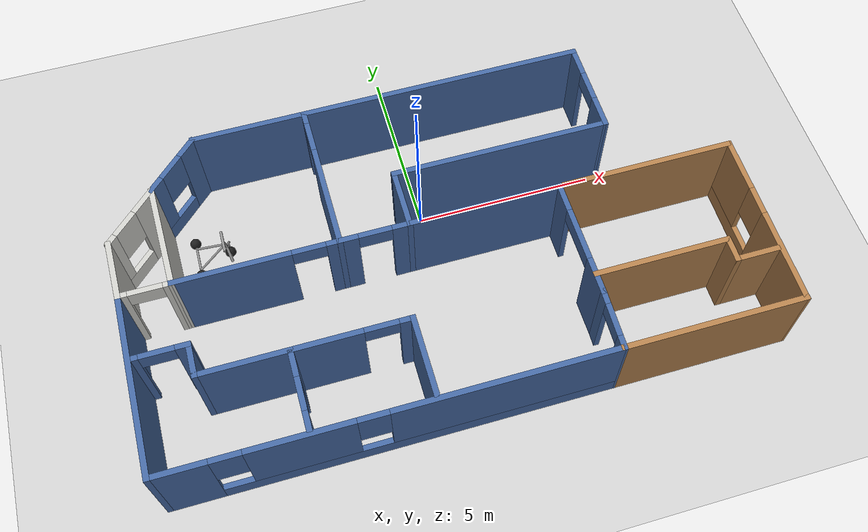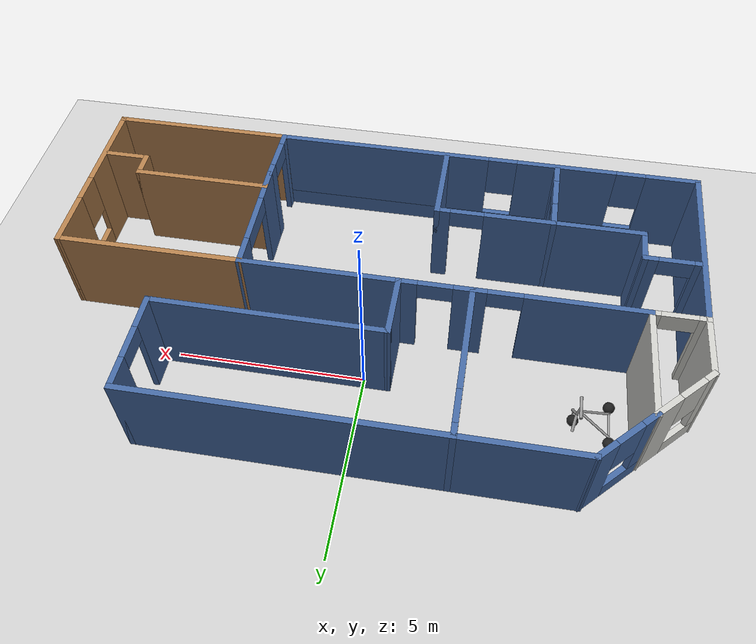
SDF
<sdf version="1.6">
 <world name="default">
  <model name="ground_plane">
   <static>1</static>
   <link name="link">
    <collision name="collision">
     <geometry><plane><normal>0 0 1</normal><size>100 100</size></plane></geometry>
     <surface>
      <contact><collide_bitmask>65535</collide_bitmask></contact>
      <friction><ode><mu>100</mu><mu2>50</mu2></ode></friction>
     </surface>
    </collision>
    <visual name="visual">
     <cast_shadows>0</cast_shadows>
     <geometry><plane><normal>0 0 1</normal><size>100 100</size></plane></geometry>
     <material>
      <script><uri>file://media/materials/scripts/gazebo.material</uri><name>Gazebo/Grey</name></script>
     </material>
    </visual>
   </link>
  </model>
  <model name="Building">
   <pose>0.01386 -1.75865 0 0 -0 0</pose>
   <link name="Wall_102">
    <pose>-2.84879 -2.32289 0 0 -0 0</pose>
    <visual name="Wall_102_Visual_0">
     <pose>-0.664345 0 1.25 0 -0 0</pose>
     <geometry><box><size>1.92131 0.15 2.5</size></box></geometry>
     <material>
      <script><uri>file://media/materials/scripts/gazebo.material</uri><name>Gazebo/Grey</name></script>
      <ambient>0.266667 0.407843 0.631373 1</ambient>
     </material>
     <meta><layer>0</layer></meta>
    </visual>
    <collision name="Wall_102_Collision_0">
     <geometry><box><size>1.92131 0.15 2.5</size></box></geometry>
     <pose>-0.664345 0 1.25 0 -0 0</pose>
    </collision>
    <visual name="Wall_102_Visual_1">
     <pose>1.41065 0 1.25 0 -0 0</pose>
     <geometry><box><size>0.42869 0.15 2.5</size></box></geometry>
     <material>
      <script><uri>file://media/materials/scripts/gazebo.material</uri><name>Gazebo/Grey</name></script>
      <ambient>0.266667 0.407843 0.631373 1</ambient>
     </material>
     <meta><layer>0</layer></meta>
    </visual>
    <collision name="Wall_102_Collision_1">
     <geometry><box><size>0.42869 0.15 2.5</size></box></geometry>
     <pose>1.41065 0 1.25 0 -0 0</pose>
    </collision>
    <visual name="Wall_102_Visual_2">
     <pose>0.74631 0 2.25 0 -0 0</pose>
     <geometry><box><size>0.9 0.15 0.5</size></box></geometry>
     <material>
      <script><uri>file://media/materials/scripts/gazebo.material</uri><name>Gazebo/Grey</name></script>
      <ambient>0.266667 0.407843 0.631373 1</ambient>
     </material>
     <meta><layer>0</layer></meta>
    </visual>
    <collision name="Wall_102_Collision_2">
     <geometry><box><size>0.9 0.15 0.5</size></box></geometry>
     <pose>0.74631 0 2.25 0 -0 0</pose>
    </collision>
   </link>
   <link name="Wall_104">
    <collision name="Wall_104_Collision">
     <geometry><box><size>2.5 0.15 2.5</size></box></geometry>
     <pose>0 0 1.25 0 -0 0</pose>
    </collision>
    <visual name="Wall_104_Visual">
     <pose>0 0 1.25 0 -0 0</pose>
     <geometry><box><size>2.5 0.15 2.5</size></box></geometry>
     <material>
      <script><uri>file://media/materials/scripts/gazebo.material</uri><name>Gazebo/Grey</name></script>
      <ambient>0.266667 0.407843 0.631373 1</ambient>
     </material>
     <meta><layer>0</layer></meta>
    </visual>
    <pose>-5.57379 -2.32289 0 0 -0 3.14159</pose>
   </link>
   <link name="Wall_105">
    <collision name="Wall_105_Collision">
     <geometry><box><size>1 0.15 2.5</size></box></geometry>
     <pose>0 0 1.25 0 -0 0</pose>
    </collision>
    <visual name="Wall_105_Visual">
     <pose>0 0 1.25 0 -0 0</pose>
     <geometry><box><size>1 0.15 2.5</size></box></geometry>
     <material>
      <script><uri>file://media/materials/scripts/gazebo.material</uri><name>Gazebo/Grey</name></script>
      <ambient>0.266667 0.407843 0.631373 1</ambient>
     </material>
     <meta><layer>0</layer></meta>
    </visual>
    <pose>-6.74879 -1.89789 0 0 -0 1.5708</pose>
   </link>
   <link name="Wall_106">
    <pose>-7.42379 -1.47289 0 0 -0 3.14159</pose>
    <visual name="Wall_106_Visual_0">
     <pose>-0.545893 0 1.25 0 -0 0</pose>
     <geometry><box><size>0.408214 0.15 2.5</size></box></geometry>
     <material>
      <script><uri>file://media/materials/scripts/gazebo.material</uri><name>Gazebo/Grey</name></script>
      <ambient>0.266667 0.407843 0.631373 1</ambient>
     </material>
     <meta><layer>0</layer></meta>
    </visual>
    <collision name="Wall_106_Collision_0">
     <geometry><box><size>0.408214 0.15 2.5</size></box></geometry>
     <pose>-0.545893 0 1.25 0 -0 0</pose>
    </collision>
    <visual name="Wall_106_Visual_1">
     <pose>0.654107 0 1.25 0 -0 0</pose>
     <geometry><box><size>0.191786 0.15 2.5</size></box></geometry>
     <material>
      <script><uri>file://media/materials/scripts/gazebo.material</uri><name>Gazebo/Grey</name></script>
      <ambient>0.266667 0.407843 0.631373 1</ambient>
     </material>
     <meta><layer>0</layer></meta>
    </visual>
    <collision name="Wall_106_Collision_1">
     <geometry><box><size>0.191786 0.15 2.5</size></box></geometry>
     <pose>0.654107 0 1.25 0 -0 0</pose>
    </collision>
    <visual name="Wall_106_Visual_2">
     <pose>0.108214 0 2.25 0 -0 0</pose>
     <geometry><box><size>0.9 0.15 0.5</size></box></geometry>
     <material>
      <script><uri>file://media/materials/scripts/gazebo.material</uri><name>Gazebo/Grey</name></script>
      <ambient>0.266667 0.407843 0.631373 1</ambient>
     </material>
     <meta><layer>0</layer></meta>
    </visual>
    <collision name="Wall_106_Collision_2">
     <geometry><box><size>0.9 0.15 0.5</size></box></geometry>
     <pose>0.108214 0 2.25 0 -0 0</pose>
    </collision>
   </link>
   <link name="Wall_110">
    <collision name="Wall_110_Collision">
     <geometry><box><size>5 0.15 2.5</size></box></geometry>
     <pose>0 0 1.25 0 -0 0</pose>
    </collision>
    <visual name="Wall_110_Visual">
     <pose>0 0 1.25 0 -0 0</pose>
     <geometry><box><size>5 0.15 2.5</size></box></geometry>
     <material>
      <script><uri>file://media/materials/scripts/gazebo.material</uri><name>Gazebo/Wood</name></script>
      <ambient>0.266667 0.407843 0.631373 1</ambient>
     </material>
     <meta><layer>0</layer></meta>
    </visual>
    <pose>5.84686 -4.53551 0 0 -0 3.14159</pose>
   </link>
   <link name="Wall_112">
    <collision name="Wall_112_Collision">
     <geometry><box><size>3.75 0.15 2.5</size></box></geometry>
     <pose>0 0 1.25 0 -0 0</pose>
    </collision>
    <visual name="Wall_112_Visual">
     <pose>0 0 1.25 0 -0 0</pose>
     <geometry><box><size>3.75 0.15 2.5</size></box></geometry>
     <material>
      <script><uri>file://media/materials/scripts/gazebo.material</uri><name>Gazebo/Wood</name></script>
      <ambient>0.266667 0.407843 0.631373 1</ambient>
     </material>
     <meta><layer>0</layer></meta>
    </visual>
    <pose>5.25889 -2.43595 0 0 -0 0</pose>
   </link>
   <link name="Wall_113">
    <collision name="Wall_113_Collision">
     <geometry><box><size>0.75 0.15 2.5</size></box></geometry>
     <pose>0 0 1.25 0 -0 0</pose>
    </collision>
    <visual name="Wall_113_Visual">
     <pose>0 0 1.25 0 -0 0</pose>
     <geometry><box><size>0.75 0.15 2.5</size></box></geometry>
     <material>
      <script><uri>file://media/materials/scripts/gazebo.material</uri><name>Gazebo/Wood</name></script>
      <ambient>0.266667 0.407843 0.631373 1</ambient>
     </material>
     <meta><layer>0</layer></meta>
    </visual>
    <pose>7.05889 -2.73595 0 0 0 -1.5708</pose>
   </link>
   <link name="Wall_114">
    <collision name="Wall_114_Collision">
     <geometry><box><size>1.25 0.15 2.5</size></box></geometry>
     <pose>0 0 1.25 0 -0 0</pose>
    </collision>
    <visual name="Wall_114_Visual">
     <pose>0 0 1.25 0 -0 0</pose>
     <geometry><box><size>1.25 0.15 2.5</size></box></geometry>
     <material>
      <script><uri>file://media/materials/scripts/gazebo.material</uri><name>Gazebo/Wood</name></script>
      <ambient>0.266667 0.407843 0.631373 1</ambient>
     </material>
     <meta><layer>0</layer></meta>
    </visual>
    <pose>7.60889 -3.03595 0 0 -0 0</pose>
   </link>
   <link name="Wall_38">
    <collision name="Wall_38_Collision">
     <geometry><box><size>8 0.15 2.5</size></box></geometry>
     <pose>0 0 1.25 0 -0 0</pose>
    </collision>
    <visual name="Wall_38_Visual">
     <pose>0 0 1.25 0 -0 0</pose>
     <geometry><box><size>8 0.15 2.5</size></box></geometry>
     <material>
      <script><uri>file://media/materials/scripts/gazebo.material</uri><name>Gazebo/Grey</name></script>
      <ambient>0.266667 0.407843 0.631373 1</ambient>
     </material>
     <meta><layer>0</layer></meta>
    </visual>
    <pose>1.38708 4.50609 0 0 -0 0</pose>
   </link>
   <link name="Wall_45">
    <pose>-1.58992 0.314341 0 0 -0 0</pose>
    <visual name="Wall_45_Visual_0">
     <pose>-0.726162 0 1.25 0 -0 0</pose>
     <geometry><box><size>0.547677 0.15 2.5</size></box></geometry>
     <material>
      <script><uri>file://media/materials/scripts/gazebo.material</uri><name>Gazebo/Grey</name></script>
      <ambient>0.266667 0.407843 0.631373 1</ambient>
     </material>
     <meta><layer>0</layer></meta>
    </visual>
    <collision name="Wall_45_Collision_0">
     <geometry><box><size>0.547677 0.15 2.5</size></box></geometry>
     <pose>-0.726162 0 1.25 0 -0 0</pose>
    </collision>
    <visual name="Wall_45_Visual_1">
     <pose>0.723838 0 1.25 0 -0 0</pose>
     <geometry><box><size>0.552323 0.15 2.5</size></box></geometry>
     <material>
      <script><uri>file://media/materials/scripts/gazebo.material</uri><name>Gazebo/Grey</name></script>
      <ambient>0.266667 0.407843 0.631373 1</ambient>
     </material>
     <meta><layer>0</layer></meta>
    </visual>
    <collision name="Wall_45_Collision_1">
     <geometry><box><size>0.552323 0.15 2.5</size></box></geometry>
     <pose>0.723838 0 1.25 0 -0 0</pose>
    </collision>
    <visual name="Wall_45_Visual_2">
     <pose>-0.002323 0 2.25 0 -0 0</pose>
     <geometry><box><size>0.9 0.15 0.5</size></box></geometry>
     <material>
      <script><uri>file://media/materials/scripts/gazebo.material</uri><name>Gazebo/Grey</name></script>
      <ambient>0.266667 0.407843 0.631373 1</ambient>
     </material>
     <meta><layer>0</layer></meta>
    </visual>
    <collision name="Wall_45_Collision_2">
     <geometry><box><size>0.9 0.15 0.5</size></box></geometry>
     <pose>-0.002323 0 2.25 0 -0 0</pose>
    </collision>
   </link>
   <link name="Wall_47">
    <pose>-2.53403 2.41022 0 0 0 -1.56894</pose>
    <visual name="Wall_47_Visual_0">
     <pose>-1.96327 0 1.25 0 -0 0</pose>
     <geometry><box><size>0.415543 0.15 2.5</size></box></geometry>
     <material>
      <script><uri>file://media/materials/scripts/gazebo.material</uri><name>Gazebo/Grey</name></script>
      <ambient>0.266667 0.407843 0.631373 1</ambient>
     </material>
     <meta><layer>0</layer></meta>
    </visual>
    <collision name="Wall_47_Collision_0">
     <geometry><box><size>0.415543 0.15 2.5</size></box></geometry>
     <pose>-1.96327 0 1.25 0 -0 0</pose>
    </collision>
    <visual name="Wall_47_Visual_1">
     <pose>0.657772 0 1.25 0 -0 0</pose>
     <geometry><box><size>3.02655 0.15 2.5</size></box></geometry>
     <material>
      <script><uri>file://media/materials/scripts/gazebo.material</uri><name>Gazebo/Grey</name></script>
      <ambient>0.266667 0.407843 0.631373 1</ambient>
     </material>
     <meta><layer>0</layer></meta>
    </visual>
    <collision name="Wall_47_Collision_1">
     <geometry><box><size>3.02655 0.15 2.5</size></box></geometry>
     <pose>0.657772 0 1.25 0 -0 0</pose>
    </collision>
    <visual name="Wall_47_Visual_2">
     <pose>-1.3055 0 2.25 0 -0 0</pose>
     <geometry><box><size>0.9 0.15 0.5</size></box></geometry>
     <material>
      <script><uri>file://media/materials/scripts/gazebo.material</uri><name>Gazebo/Grey</name></script>
      <ambient>0.266667 0.407843 0.631373 1</ambient>
     </material>
     <meta><layer>0</layer></meta>
    </visual>
    <collision name="Wall_47_Collision_2">
     <geometry><box><size>0.9 0.15 0.5</size></box></geometry>
     <pose>-1.3055 0 2.25 0 -0 0</pose>
    </collision>
   </link>
   <link name="Wall_49">
    <collision name="Wall_49_Collision">
     <geometry><box><size>1.75 0.15 2.5</size></box></geometry>
     <pose>0 0 1.25 0 -0 0</pose>
    </collision>
    <visual name="Wall_49_Visual">
     <pose>0 0 1.25 0 -0 0</pose>
     <geometry><box><size>1.75 0.15 2.5</size></box></geometry>
     <material>
      <script><uri>file://media/materials/scripts/gazebo.material</uri><name>Gazebo/Grey</name></script>
      <ambient>0.266667 0.407843 0.631373 1</ambient>
     </material>
     <meta><layer>0</layer></meta>
    </visual>
    <pose>-0.664918 1.11434 0 0 -0 1.5708</pose>
   </link>
   <link name="Wall_53">
    <pose>5.31208 3.20609 0 0 0 -1.5708</pose>
    <visual name="Wall_53_Visual_0">
     <pose>-0.926931 0 1.25 0 -0 0</pose>
     <geometry><box><size>0.896138 0.15 2.5</size></box></geometry>
     <material>
      <script><uri>file://media/materials/scripts/gazebo.material</uri><name>Gazebo/Grey</name></script>
      <ambient>0.266667 0.407843 0.631373 1</ambient>
     </material>
     <meta><layer>0</layer></meta>
    </visual>
    <collision name="Wall_53_Collision_0">
     <geometry><box><size>0.896138 0.15 2.5</size></box></geometry>
     <pose>-0.926931 0 1.25 0 -0 0</pose>
    </collision>
    <visual name="Wall_53_Visual_1">
     <pose>0.898069 0 1.25 0 -0 0</pose>
     <geometry><box><size>0.953862 0.15 2.5</size></box></geometry>
     <material>
      <script><uri>file://media/materials/scripts/gazebo.material</uri><name>Gazebo/Grey</name></script>
      <ambient>0.266667 0.407843 0.631373 1</ambient>
     </material>
     <meta><layer>0</layer></meta>
    </visual>
    <collision name="Wall_53_Collision_1">
     <geometry><box><size>0.953862 0.15 2.5</size></box></geometry>
     <pose>0.898069 0 1.25 0 -0 0</pose>
    </collision>
    <visual name="Wall_53_Visual_2">
     <pose>-0.028862 0 2.25 0 -0 0</pose>
     <geometry><box><size>0.9 0.15 0.5</size></box></geometry>
     <material>
      <script><uri>file://media/materials/scripts/gazebo.material</uri><name>Gazebo/Grey</name></script>
      <ambient>0.266667 0.407843 0.631373 1</ambient>
     </material>
     <meta><layer>0</layer></meta>
    </visual>
    <collision name="Wall_53_Collision_2">
     <geometry><box><size>0.9 0.15 0.5</size></box></geometry>
     <pose>-0.028862 0 2.25 0 -0 0</pose>
    </collision>
   </link>
   <link name="Wall_54">
    <collision name="Wall_54_Collision">
     <geometry><box><size>6.127 0.15 2.5</size></box></geometry>
     <pose>0 0 1.25 0 -0 0</pose>
    </collision>
    <visual name="Wall_54_Visual">
     <pose>0 0 1.25 0 -0 0</pose>
     <geometry><box><size>6.127 0.15 2.5</size></box></geometry>
     <material>
      <script><uri>file://media/materials/scripts/gazebo.material</uri><name>Gazebo/Grey</name></script>
      <ambient>0.266667 0.407843 0.631373 1</ambient>
     </material>
     <meta><layer>0</layer></meta>
    </visual>
    <pose>2.32358 1.91022 0 0 -0 3.14021</pose>
   </link>
   <link name="Wall_56">
    <collision name="Wall_56_Collision">
     <geometry><box><size>4.25 0.15 2.5</size></box></geometry>
     <pose>0 0 1.25 0 -0 0</pose>
    </collision>
    <visual name="Wall_56_Visual">
     <pose>0 0 1.25 0 -0 0</pose>
     <geometry><box><size>4.25 0.15 2.5</size></box></geometry>
     <material>
      <script><uri>file://media/materials/scripts/gazebo.material</uri><name>Gazebo/Grey</name></script>
      <ambient>0.266667 0.407843 0.631373 1</ambient>
     </material>
     <meta><layer>0</layer></meta>
    </visual>
    <pose>1.38508 0.314341 0 0 -0 0</pose>
   </link>
   <link name="Wall_59">
    <pose>8.27847 -2.11058 0 0 -0 1.56807</pose>
    <visual name="Wall_59_Visual_0">
     <pose>-1.18175 0 1.25 0 -0 0</pose>
     <geometry><box><size>2.63637 0.15 2.5</size></box></geometry>
     <material>
      <script><uri>file://media/materials/scripts/gazebo.material</uri><name>Gazebo/Wood</name></script>
      <ambient>0.266667 0.407843 0.631373 1</ambient>
     </material>
     <meta><layer>0</layer></meta>
    </visual>
    <collision name="Wall_59_Collision_0">
     <geometry><box><size>2.63637 0.15 2.5</size></box></geometry>
     <pose>-1.18175 0 1.25 0 -0 0</pose>
    </collision>
    <visual name="Wall_59_Visual_1">
     <pose>1.31819 0 0.25 0 -0 0</pose>
     <geometry><box><size>2.36349 0.15 0.5</size></box></geometry>
     <material>
      <script><uri>file://media/materials/scripts/gazebo.material</uri><name>Gazebo/Wood</name></script>
      <ambient>0.266667 0.407843 0.631373 1</ambient>
     </material>
     <meta><layer>0</layer></meta>
    </visual>
    <collision name="Wall_59_Collision_1">
     <geometry><box><size>2.36349 0.15 0.5</size></box></geometry>
     <pose>1.31819 0 0.25 0 -0 0</pose>
    </collision>
    <visual name="Wall_59_Visual_2">
     <pose>1.71819 0 1.5 0 -0 0</pose>
     <geometry><box><size>1.5635 0.15 2</size></box></geometry>
     <material>
      <script><uri>file://media/materials/scripts/gazebo.material</uri><name>Gazebo/Wood</name></script>
      <ambient>0.266667 0.407843 0.631373 1</ambient>
     </material>
     <meta><layer>0</layer></meta>
    </visual>
    <collision name="Wall_59_Collision_2">
     <geometry><box><size>1.5635 0.15 2</size></box></geometry>
     <pose>1.71819 0 1.5 0 -0 0</pose>
    </collision>
    <visual name="Wall_59_Visual_3">
     <pose>0.536439 0 1.9 0 -0 0</pose>
     <geometry><box><size>0.8 0.15 1.2</size></box></geometry>
     <material>
      <script><uri>file://media/materials/scripts/gazebo.material</uri><name>Gazebo/Wood</name></script>
      <ambient>0.266667 0.407843 0.631373 1</ambient>
     </material>
     <meta><layer>0</layer></meta>
    </visual>
    <collision name="Wall_59_Collision_3">
     <geometry><box><size>0.8 0.15 1.2</size></box></geometry>
     <pose>0.536439 0 1.9 0 -0 0</pose>
    </collision>
   </link>
   <link name="Wall_60">
    <collision name="Wall_60_Collision">
     <geometry><box><size>5 0.15 2.5</size></box></geometry>
     <pose>0 0 1.25 0 -0 0</pose>
    </collision>
    <visual name="Wall_60_Visual">
     <pose>0 0 1.25 0 -0 0</pose>
     <geometry><box><size>5 0.15 2.5</size></box></geometry>
     <material>
      <script><uri>file://media/materials/scripts/gazebo.material</uri><name>Gazebo/Wood</name></script>
      <ambient>0.266667 0.407843 0.631373 1</ambient>
     </material>
     <meta><layer>0</layer></meta>
    </visual>
    <pose>5.86008 0.314341 0 0 -0 3.14159</pose>
   </link>
   <link name="Wall_64">
    <pose>-4.70513 0.314341 0 0 -0 3.14159</pose>
    <visual name="Wall_64_Visual_0">
     <pose>-2.03246 0 1.25 0 -0 0</pose>
     <geometry><box><size>0.435078 0.15 2.5</size></box></geometry>
     <material>
      <script><uri>file://media/materials/scripts/gazebo.material</uri><name>Gazebo/Grey</name></script>
      <ambient>0.266667 0.407843 0.631373 1</ambient>
     </material>
     <meta><layer>0</layer></meta>
    </visual>
    <collision name="Wall_64_Collision_0">
     <geometry><box><size>0.435078 0.15 2.5</size></box></geometry>
     <pose>-2.03246 0 1.25 0 -0 0</pose>
    </collision>
    <visual name="Wall_64_Visual_1">
     <pose>0.667539 0 1.25 0 -0 0</pose>
     <geometry><box><size>3.16492 0.15 2.5</size></box></geometry>
     <material>
      <script><uri>file://media/materials/scripts/gazebo.material</uri><name>Gazebo/Grey</name></script>
      <ambient>0.266667 0.407843 0.631373 1</ambient>
     </material>
     <meta><layer>0</layer></meta>
    </visual>
    <collision name="Wall_64_Collision_1">
     <geometry><box><size>3.16492 0.15 2.5</size></box></geometry>
     <pose>0.667539 0 1.25 0 -0 0</pose>
    </collision>
    <visual name="Wall_64_Visual_2">
     <pose>-1.36492 0 2.25 0 -0 0</pose>
     <geometry><box><size>0.9 0.15 0.5</size></box></geometry>
     <material>
      <script><uri>file://media/materials/scripts/gazebo.material</uri><name>Gazebo/Grey</name></script>
      <ambient>0.266667 0.407843 0.631373 1</ambient>
     </material>
     <meta><layer>0</layer></meta>
    </visual>
    <collision name="Wall_64_Collision_2">
     <geometry><box><size>0.9 0.15 0.5</size></box></geometry>
     <pose>-1.36492 0 2.25 0 -0 0</pose>
    </collision>
   </link>
   <link name="Wall_73">
    <collision name="Wall_73_Collision">
     <geometry><box><size>3.25 0.15 2.5</size></box></geometry>
     <pose>0 0 1.25 0 -0 0</pose>
    </collision>
    <visual name="Wall_73_Visual">
     <pose>0 0 1.25 0 -0 0</pose>
     <geometry><box><size>3.25 0.15 2.5</size></box></geometry>
     <material>
      <script><uri>file://media/materials/scripts/gazebo.material</uri><name>Gazebo/Grey</name></script>
      <ambient>0.266667 0.407843 0.631373 1</ambient>
     </material>
     <meta><layer>0</layer></meta>
    </visual>
    <pose>-4.08793 4.50609 0 0 -0 3.14159</pose>
   </link>
   <link name="Wall_74">
    <pose>-6.292 3.85202 0 0 0 -2.35619</pose>
    <visual name="Wall_74_Visual_0">
     <pose>-0.659149 0 1.25 0 -0 0</pose>
     <geometry><box><size>0.681703 0.15 2.5</size></box></geometry>
     <material>
      <script><uri>file://media/materials/scripts/gazebo.material</uri><name>Gazebo/Grey</name></script>
      <ambient>0.266667 0.407843 0.631373 1</ambient>
     </material>
     <meta><layer>0</layer></meta>
    </visual>
    <collision name="Wall_74_Collision_0">
     <geometry><box><size>0.681703 0.15 2.5</size></box></geometry>
     <pose>-0.659149 0 1.25 0 -0 0</pose>
    </collision>
    <visual name="Wall_74_Visual_1">
     <pose>0.340851 0 0.25 0 -0 0</pose>
     <geometry><box><size>1.3183 0.15 0.5</size></box></geometry>
     <material>
      <script><uri>file://media/materials/scripts/gazebo.material</uri><name>Gazebo/Grey</name></script>
      <ambient>0.266667 0.407843 0.631373 1</ambient>
     </material>
     <meta><layer>0</layer></meta>
    </visual>
    <collision name="Wall_74_Collision_1">
     <geometry><box><size>1.3183 0.15 0.5</size></box></geometry>
     <pose>0.340851 0 0.25 0 -0 0</pose>
    </collision>
    <visual name="Wall_74_Visual_2">
     <pose>0.740851 0 1.5 0 -0 0</pose>
     <geometry><box><size>0.518297 0.15 2</size></box></geometry>
     <material>
      <script><uri>file://media/materials/scripts/gazebo.material</uri><name>Gazebo/Grey</name></script>
      <ambient>0.266667 0.407843 0.631373 1</ambient>
     </material>
     <meta><layer>0</layer></meta>
    </visual>
    <collision name="Wall_74_Collision_2">
     <geometry><box><size>0.518297 0.15 2</size></box></geometry>
     <pose>0.740851 0 1.5 0 -0 0</pose>
    </collision>
    <visual name="Wall_74_Visual_3">
     <pose>0.081703 0 1.9 0 -0 0</pose>
     <geometry><box><size>0.8 0.15 1.2</size></box></geometry>
     <material>
      <script><uri>file://media/materials/scripts/gazebo.material</uri><name>Gazebo/Grey</name></script>
      <ambient>0.266667 0.407843 0.631373 1</ambient>
     </material>
     <meta><layer>0</layer></meta>
    </visual>
    <collision name="Wall_74_Collision_3">
     <geometry><box><size>0.8 0.15 1.2</size></box></geometry>
     <pose>0.081703 0 1.9 0 -0 0</pose>
    </collision>
   </link>
   <link name="Wall_75">
    <collision name="Wall_75_Collision">
     <geometry><box><size>3.03436 0.15 2.5</size></box></geometry>
     <pose>0 0 1.25 0 -0 0</pose>
    </collision>
    <visual name="Wall_75_Visual">
     <pose>0 0 1.25 0 -0 0</pose>
     <geometry><box><size>3.03436 0.15 2.5</size></box></geometry>
     <material>
      <script><uri>file://media/materials/scripts/gazebo.material</uri><name>Gazebo/CeilingTiled</name></script>
      <ambient>0.266667 0.407843 0.631373 1</ambient>
     </material>
     <meta><layer>0</layer></meta>
    </visual>
    <pose>-6.9131 1.75614 0 0 0 -1.54793</pose>
   </link>
   <link name="Wall_77">
    <pose>-7.55513 0.314341 0 0 -0 3.14159</pose>
    <visual name="Wall_77_Visual_0">
     <pose>-0.606045 0 1.25 0 -0 0</pose>
     <geometry><box><size>0.28791 0.15 2.5</size></box></geometry>
     <material>
      <script><uri>file://media/materials/scripts/gazebo.material</uri><name>Gazebo/CeilingTiled</name></script>
      <ambient>0.266667 0.407843 0.631373 1</ambient>
     </material>
     <meta><layer>0</layer></meta>
    </visual>
    <collision name="Wall_77_Collision_0">
     <geometry><box><size>0.28791 0.15 2.5</size></box></geometry>
     <pose>-0.606045 0 1.25 0 -0 0</pose>
    </collision>
    <visual name="Wall_77_Visual_1">
     <pose>0.593955 0 1.25 0 -0 0</pose>
     <geometry><box><size>0.31209 0.15 2.5</size></box></geometry>
     <material>
      <script><uri>file://media/materials/scripts/gazebo.material</uri><name>Gazebo/CeilingTiled</name></script>
      <ambient>0.266667 0.407843 0.631373 1</ambient>
     </material>
     <meta><layer>0</layer></meta>
    </visual>
    <collision name="Wall_77_Collision_1">
     <geometry><box><size>0.31209 0.15 2.5</size></box></geometry>
     <pose>0.593955 0 1.25 0 -0 0</pose>
    </collision>
    <visual name="Wall_77_Visual_2">
     <pose>-0.01209 0 2.25 0 -0 0</pose>
     <geometry><box><size>0.9 0.15 0.5</size></box></geometry>
     <material>
      <script><uri>file://media/materials/scripts/gazebo.material</uri><name>Gazebo/CeilingTiled</name></script>
      <ambient>0.266667 0.407843 0.631373 1</ambient>
     </material>
     <meta><layer>0</layer></meta>
    </visual>
    <collision name="Wall_77_Collision_2">
     <geometry><box><size>0.9 0.15 0.5</size></box></geometry>
     <pose>-0.01209 0 2.25 0 -0 0</pose>
    </collision>
   </link>
   <link name="Wall_78">
    <collision name="Wall_78_Collision">
     <geometry><box><size>5 0.15 2.5</size></box></geometry>
     <pose>0 0 1.25 0 -0 0</pose>
    </collision>
    <visual name="Wall_78_Visual">
     <pose>0 0 1.25 0 -0 0</pose>
     <geometry><box><size>5 0.15 2.5</size></box></geometry>
     <material>
      <script><uri>file://media/materials/scripts/gazebo.material</uri><name>Gazebo/Grey</name></script>
      <ambient>0.266667 0.407843 0.631373 1</ambient>
     </material>
     <meta><layer>0</layer></meta>
    </visual>
    <pose>-8.23013 -2.11066 0 0 0 -1.5708</pose>
   </link>
   <link name="Wall_79">
    <pose>-2.43013 -4.53566 0 0 -0 0</pose>
    <visual name="Wall_79_Visual_0">
     <pose>-5.13095 0 1.25 0 -0 0</pose>
     <geometry><box><size>1.48809 0.15 2.5</size></box></geometry>
     <material>
      <script><uri>file://media/materials/scripts/gazebo.material</uri><name>Gazebo/Grey</name></script>
      <ambient>0.266667 0.407843 0.631373 1</ambient>
     </material>
     <meta><layer>0</layer></meta>
    </visual>
    <collision name="Wall_79_Collision_0">
     <geometry><box><size>1.48809 0.15 2.5</size></box></geometry>
     <pose>-5.13095 0 1.25 0 -0 0</pose>
    </collision>
    <visual name="Wall_79_Visual_1">
     <pose>0.744046 0 0.25 0 -0 0</pose>
     <geometry><box><size>10.2619 0.15 0.5</size></box></geometry>
     <material>
      <script><uri>file://media/materials/scripts/gazebo.material</uri><name>Gazebo/Grey</name></script>
      <ambient>0.266667 0.407843 0.631373 1</ambient>
     </material>
     <meta><layer>0</layer></meta>
    </visual>
    <collision name="Wall_79_Collision_1">
     <geometry><box><size>10.2619 0.15 0.5</size></box></geometry>
     <pose>0.744046 0 0.25 0 -0 0</pose>
    </collision>
    <visual name="Wall_79_Visual_2">
     <pose>-2.21742 0 1.5 0 -0 0</pose>
     <geometry><box><size>2.73898 0.15 2</size></box></geometry>
     <material>
      <script><uri>file://media/materials/scripts/gazebo.material</uri><name>Gazebo/Grey</name></script>
      <ambient>0.266667 0.407843 0.631373 1</ambient>
     </material>
     <meta><layer>0</layer></meta>
    </visual>
    <collision name="Wall_79_Collision_2">
     <geometry><box><size>2.73898 0.15 2</size></box></geometry>
     <pose>-2.21742 0 1.5 0 -0 0</pose>
    </collision>
    <visual name="Wall_79_Visual_3">
     <pose>2.91354 0 1.5 0 -0 0</pose>
     <geometry><box><size>5.92292 0.15 2</size></box></geometry>
     <material>
      <script><uri>file://media/materials/scripts/gazebo.material</uri><name>Gazebo/Grey</name></script>
      <ambient>0.266667 0.407843 0.631373 1</ambient>
     </material>
     <meta><layer>0</layer></meta>
    </visual>
    <collision name="Wall_79_Collision_3">
     <geometry><box><size>5.92292 0.15 2</size></box></geometry>
     <pose>2.91354 0 1.5 0 -0 0</pose>
    </collision>
    <visual name="Wall_79_Visual_4">
     <pose>-3.98691 0 1.9 0 -0 0</pose>
     <geometry><box><size>0.8 0.15 1.2</size></box></geometry>
     <material>
      <script><uri>file://media/materials/scripts/gazebo.material</uri><name>Gazebo/Grey</name></script>
      <ambient>0.266667 0.407843 0.631373 1</ambient>
     </material>
     <meta><layer>0</layer></meta>
    </visual>
    <collision name="Wall_79_Collision_4">
     <geometry><box><size>0.8 0.15 1.2</size></box></geometry>
     <pose>-3.98691 0 1.9 0 -0 0</pose>
    </collision>
    <visual name="Wall_79_Visual_5">
     <pose>-0.447924 0 1.9 0 -0 0</pose>
     <geometry><box><size>0.8 0.15 1.2</size></box></geometry>
     <material>
      <script><uri>file://media/materials/scripts/gazebo.material</uri><name>Gazebo/Grey</name></script>
      <ambient>0.266667 0.407843 0.631373 1</ambient>
     </material>
     <meta><layer>0</layer></meta>
    </visual>
    <collision name="Wall_79_Collision_5">
     <geometry><box><size>0.8 0.15 1.2</size></box></geometry>
     <pose>-0.447924 0 1.9 0 -0 0</pose>
    </collision>
   </link>
   <link name="Wall_81">
    <pose>-7.60015 2.54387 0 0 0 -2.35619</pose>
    <visual name="Wall_81_Visual_0">
     <pose>-0.578266 0 1.25 0 -0 0</pose>
     <geometry><box><size>0.843467 0.15 2.5</size></box></geometry>
     <material>
      <script><uri>file://media/materials/scripts/gazebo.material</uri><name>Gazebo/CeilingTiled</name></script>
      <ambient>0.266667 0.407843 0.631373 1</ambient>
     </material>
     <meta><layer>0</layer></meta>
    </visual>
    <collision name="Wall_81_Collision_0">
     <geometry><box><size>0.843467 0.15 2.5</size></box></geometry>
     <pose>-0.578266 0 1.25 0 -0 0</pose>
    </collision>
    <visual name="Wall_81_Visual_1">
     <pose>0.421734 0 0.25 0 -0 0</pose>
     <geometry><box><size>1.15653 0.15 0.5</size></box></geometry>
     <material>
      <script><uri>file://media/materials/scripts/gazebo.material</uri><name>Gazebo/CeilingTiled</name></script>
      <ambient>0.266667 0.407843 0.631373 1</ambient>
     </material>
     <meta><layer>0</layer></meta>
    </visual>
    <collision name="Wall_81_Collision_1">
     <geometry><box><size>1.15653 0.15 0.5</size></box></geometry>
     <pose>0.421734 0 0.25 0 -0 0</pose>
    </collision>
    <visual name="Wall_81_Visual_2">
     <pose>0.821734 0 1.5 0 -0 0</pose>
     <geometry><box><size>0.356533 0.15 2</size></box></geometry>
     <material>
      <script><uri>file://media/materials/scripts/gazebo.material</uri><name>Gazebo/CeilingTiled</name></script>
      <ambient>0.266667 0.407843 0.631373 1</ambient>
     </material>
     <meta><layer>0</layer></meta>
    </visual>
    <collision name="Wall_81_Collision_2">
     <geometry><box><size>0.356533 0.15 2</size></box></geometry>
     <pose>0.821734 0 1.5 0 -0 0</pose>
    </collision>
    <visual name="Wall_81_Visual_3">
     <pose>0.243467 0 1.9 0 -0 0</pose>
     <geometry><box><size>0.8 0.15 1.2</size></box></geometry>
     <material>
      <script><uri>file://media/materials/scripts/gazebo.material</uri><name>Gazebo/CeilingTiled</name></script>
      <ambient>0.266667 0.407843 0.631373 1</ambient>
     </material>
     <meta><layer>0</layer></meta>
    </visual>
    <collision name="Wall_81_Collision_3">
     <geometry><box><size>0.8 0.15 1.2</size></box></geometry>
     <pose>0.243467 0 1.9 0 -0 0</pose>
    </collision>
   </link>
   <link name="Wall_82">
    <collision name="Wall_82_Collision">
     <geometry><box><size>1.72564 0.15 2.5</size></box></geometry>
     <pose>0 0 1.25 0 -0 0</pose>
    </collision>
    <visual name="Wall_82_Visual">
     <pose>0 0 1.25 0 -0 0</pose>
     <geometry><box><size>1.72564 0.15 2.5</size></box></geometry>
     <material>
      <script><uri>file://media/materials/scripts/gazebo.material</uri><name>Gazebo/CeilingTiled</name></script>
      <ambient>0.266667 0.407843 0.631373 1</ambient>
     </material>
     <meta><layer>0</layer></meta>
    </visual>
    <pose>-8.24217 1.10207 0 0 0 -1.5555</pose>
   </link>
   <link name="Wall_90">
    <pose>-4.39879 -3.37289 0 0 0 -1.5708</pose>
    <visual name="Wall_90_Visual_0">
     <pose>-0.725857 0 1.25 0 -0 0</pose>
     <geometry><box><size>0.798287 0.15 2.5</size></box></geometry>
     <material>
      <script><uri>file://media/materials/scripts/gazebo.material</uri><name>Gazebo/Grey</name></script>
      <ambient>0.266667 0.407843 0.631373 1</ambient>
     </material>
     <meta><layer>0</layer></meta>
    </visual>
    <collision name="Wall_90_Collision_0">
     <geometry><box><size>0.798287 0.15 2.5</size></box></geometry>
     <pose>-0.725857 0 1.25 0 -0 0</pose>
    </collision>
    <visual name="Wall_90_Visual_1">
     <pose>0.849143 0 1.25 0 -0 0</pose>
     <geometry><box><size>0.551713 0.15 2.5</size></box></geometry>
     <material>
      <script><uri>file://media/materials/scripts/gazebo.material</uri><name>Gazebo/Grey</name></script>
      <ambient>0.266667 0.407843 0.631373 1</ambient>
     </material>
     <meta><layer>0</layer></meta>
    </visual>
    <collision name="Wall_90_Collision_1">
     <geometry><box><size>0.551713 0.15 2.5</size></box></geometry>
     <pose>0.849143 0 1.25 0 -0 0</pose>
    </collision>
    <visual name="Wall_90_Visual_2">
     <pose>0.123287 0 2.25 0 -0 0</pose>
     <geometry><box><size>0.9 0.15 0.5</size></box></geometry>
     <material>
      <script><uri>file://media/materials/scripts/gazebo.material</uri><name>Gazebo/Grey</name></script>
      <ambient>0.266667 0.407843 0.631373 1</ambient>
     </material>
     <meta><layer>0</layer></meta>
    </visual>
    <collision name="Wall_90_Collision_2">
     <geometry><box><size>0.9 0.15 0.5</size></box></geometry>
     <pose>0.123287 0 2.25 0 -0 0</pose>
    </collision>
   </link>
   <link name="Wall_92">
    <pose>3.44771 -1.31902 0 0 -0 1.57853</pose>
    <visual name="Wall_92_Visual_0">
     <pose>-1.17707 0 1.25 0 -0 0</pose>
     <geometry><box><size>1.06278 0.15 2.5</size></box></geometry>
     <material>
      <script><uri>file://media/materials/scripts/gazebo.material</uri><name>Gazebo/Grey</name></script>
      <ambient>0.266667 0.407843 0.631373 1</ambient>
     </material>
     <meta><layer>0</layer></meta>
    </visual>
    <collision name="Wall_92_Collision_0">
     <geometry><box><size>1.06278 0.15 2.5</size></box></geometry>
     <pose>-1.17707 0 1.25 0 -0 0</pose>
    </collision>
    <visual name="Wall_92_Visual_1">
     <pose>1.28139 0 1.25 0 -0 0</pose>
     <geometry><box><size>0.854133 0.15 2.5</size></box></geometry>
     <material>
      <script><uri>file://media/materials/scripts/gazebo.material</uri><name>Gazebo/Grey</name></script>
      <ambient>0.266667 0.407843 0.631373 1</ambient>
     </material>
     <meta><layer>0</layer></meta>
    </visual>
    <collision name="Wall_92_Collision_1">
     <geometry><box><size>0.854133 0.15 2.5</size></box></geometry>
     <pose>1.28139 0 1.25 0 -0 0</pose>
    </collision>
    <visual name="Wall_92_Visual_2">
     <pose>0.104324 0 2.25 0 -0 0</pose>
     <geometry><box><size>1.5 0.15 0.5</size></box></geometry>
     <material>
      <script><uri>file://media/materials/scripts/gazebo.material</uri><name>Gazebo/Grey</name></script>
      <ambient>0.266667 0.407843 0.631373 1</ambient>
     </material>
     <meta><layer>0</layer></meta>
    </visual>
    <collision name="Wall_92_Collision_2">
     <geometry><box><size>1.5 0.15 0.5</size></box></geometry>
     <pose>0.104324 0 2.25 0 -0 0</pose>
    </collision>
   </link>
   <link name="Wall_94">
    <pose>3.44109 -3.74394 0 0 0 -1.5951</pose>
    <visual name="Wall_94_Visual_0">
     <pose>-0.64956 0 1.25 0 -0 0</pose>
     <geometry><box><size>0.434175 0.15 2.5</size></box></geometry>
     <material>
      <script><uri>file://media/materials/scripts/gazebo.material</uri><name>Gazebo/Grey</name></script>
      <ambient>0.266667 0.407843 0.631373 1</ambient>
     </material>
     <meta><layer>0</layer></meta>
    </visual>
    <collision name="Wall_94_Collision_0">
     <geometry><box><size>0.434175 0.15 2.5</size></box></geometry>
     <pose>-0.64956 0 1.25 0 -0 0</pose>
    </collision>
    <visual name="Wall_94_Visual_1">
     <pose>0.667087 0 1.25 0 -0 0</pose>
     <geometry><box><size>0.399121 0.15 2.5</size></box></geometry>
     <material>
      <script><uri>file://media/materials/scripts/gazebo.material</uri><name>Gazebo/Grey</name></script>
      <ambient>0.266667 0.407843 0.631373 1</ambient>
     </material>
     <meta><layer>0</layer></meta>
    </visual>
    <collision name="Wall_94_Collision_1">
     <geometry><box><size>0.399121 0.15 2.5</size></box></geometry>
     <pose>0.667087 0 1.25 0 -0 0</pose>
    </collision>
    <visual name="Wall_94_Visual_2">
     <pose>0.017527 0 2.25 0 -0 0</pose>
     <geometry><box><size>0.9 0.15 0.5</size></box></geometry>
     <material>
      <script><uri>file://media/materials/scripts/gazebo.material</uri><name>Gazebo/Grey</name></script>
      <ambient>0.266667 0.407843 0.631373 1</ambient>
     </material>
     <meta><layer>0</layer></meta>
    </visual>
    <collision name="Wall_94_Collision_2">
     <geometry><box><size>0.9 0.15 0.5</size></box></geometry>
     <pose>0.017527 0 2.25 0 -0 0</pose>
    </collision>
   </link>
   <link name="Wall_97">
    <collision name="Wall_97_Collision">
     <geometry><box><size>2.25 0.15 2.5</size></box></geometry>
     <pose>0 0 1.25 0 -0 0</pose>
    </collision>
    <visual name="Wall_97_Visual">
     <pose>0 0 1.25 0 -0 0</pose>
     <geometry><box><size>2.25 0.15 2.5</size></box></geometry>
     <material>
      <script><uri>file://media/materials/scripts/gazebo.material</uri><name>Gazebo/Grey</name></script>
      <ambient>0.266667 0.407843 0.631373 1</ambient>
     </material>
     <meta><layer>0</layer></meta>
    </visual>
    <pose>-1.29879 -3.37289 0 0 0 -1.5708</pose>
   </link>
   <static>1</static>
  </model>
  <model name="trisphere_cycle">
   <link name="frame">
    <pose>-0.408559 0 0.385023 0 -0.522021 0</pose>
    <inertial>
     <mass>10</mass>
     <inertia><ixx>0.228</ixx><iyy>0.743521</iyy><izz>0.965521</izz><ixy>0</ixy><ixz>0</ixz><iyz>0</iyz></inertia>
    </inertial>
    <collision name="axle_collision">
     <pose>-0.471335 0 0 1.5708 -0 0</pose>
     <geometry><cylinder><length>1.03923</length><radius>0.03</radius></cylinder></geometry>
    </collision>
    <visual name="axle_visual">
     <pose>-0.471335 0 0 1.5708 -0 0</pose>
     <geometry><cylinder><length>1.03923</length><radius>0.03</radius></cylinder></geometry>
     <material>
      <script><uri>file://media/materials/scripts/gazebo.material</uri><name>Gazebo/Grey</name></script>
     </material>
    </visual>
    <collision name="frame_left_collision">
     <pose>0 0.171552 0 -2.79253 1.57079 3.14159</pose>
     <geometry><cylinder><length>1.00317</length><radius>0.03</radius></cylinder></geometry>
    </collision>
    <visual name="frame_left_visual">
     <pose>0 0.171552 0 -2.79253 1.57079 3.14159</pose>
     <geometry><cylinder><length>1.00317</length><radius>0.03</radius></cylinder></geometry>
     <material>
      <script><uri>file://media/materials/scripts/gazebo.material</uri><name>Gazebo/Grey</name></script>
     </material>
    </visual>
    <collision name="frame_right_collision">
     <pose>0 -0.171552 0 2.79253 1.57079 -3.14159</pose>
     <geometry><cylinder><length>1.00317</length><radius>0.03</radius></cylinder></geometry>
    </collision>
    <visual name="frame_right_visual">
     <pose>0 -0.171552 0 2.79253 1.57079 -3.14159</pose>
     <geometry><cylinder><length>1.00317</length><radius>0.03</radius></cylinder></geometry>
     <material>
      <script><uri>file://media/materials/scripts/gazebo.material</uri><name>Gazebo/Grey</name></script>
     </material>
    </visual>
   </link>
   <link name="fork">
    <pose>0.041441 0 0.385023 0 -0.174533 0</pose>
    <inertial>
     <mass>3</mass>
     <inertia>
      <ixx>0.158203</ixx>
      <iyy>0.0583594</iyy>
      <izz>0.102656</izz>
      <ixy>0</ixy>
      <ixz>0</ixz>
      <iyz>0</iyz>
     </inertia>
    </inertial>
    <collision name="handlebars_collision">
     <pose>0 0 0.397748 1.5708 -0 0</pose>
     <geometry><cylinder><length>0.636396</length><radius>0.0375</radius></cylinder></geometry>
    </collision>
    <visual name="handlebars_visual">
     <pose>0 0 0.397748 1.5708 -0 0</pose>
     <geometry><cylinder><length>0.636396</length><radius>0.0375</radius></cylinder></geometry>
     <material>
      <script><uri>file://media/materials/scripts/gazebo.material</uri><name>Gazebo/Grey</name></script>
     </material>
    </visual>
    <collision name="headtube_collision">
     <pose>0 0 0.238649 0 -0 0</pose>
     <geometry><cylinder><length>0.318198</length><radius>0.0375</radius></cylinder></geometry>
    </collision>
    <visual name="headtube_visual">
     <pose>0 0 0.238649 0 -0 0</pose>
     <geometry><cylinder><length>0.318198</length><radius>0.0375</radius></cylinder></geometry>
     <material>
      <script><uri>file://media/materials/scripts/gazebo.material</uri><name>Gazebo/Grey</name></script>
     </material>
    </visual>
    <collision name="spindle_collision">
     <pose>0 0 -0.238649 1.5708 -0 0</pose>
     <geometry><cylinder><length>0.636396</length><radius>0.015</radius></cylinder></geometry>
    </collision>
    <visual name="spindle_visual">
     <pose>0 0 -0.238649 1.5708 -0 0</pose>
     <geometry><cylinder><length>0.636396</length><radius>0.015</radius></cylinder></geometry>
     <material>
      <script><uri>file://media/materials/scripts/gazebo.material</uri><name>Gazebo/Grey</name></script>
     </material>
    </visual>
    <collision name="fork_left_collision">
     <pose>0 0.159099 -0.07955 0.785398 -0 0</pose>
     <geometry><cylinder><length>0.45</length><radius>0.0375</radius></cylinder></geometry>
    </collision>
    <visual name="fork_left_visual">
     <pose>0 0.159099 -0.07955 0.785398 -0 0</pose>
     <geometry><cylinder><length>0.45</length><radius>0.0375</radius></cylinder></geometry>
     <material>
      <script><uri>file://media/materials/scripts/gazebo.material</uri><name>Gazebo/Grey</name></script>
     </material>
    </visual>
    <collision name="fork_right_collision">
     <pose>0 -0.159099 -0.07955 -0.785398 0 0</pose>
     <geometry><cylinder><length>0.45</length><radius>0.0375</radius></cylinder></geometry>
    </collision>
    <visual name="fork_right_visual">
     <pose>0 -0.159099 -0.07955 -0.785398 0 0</pose>
     <geometry><cylinder><length>0.45</length><radius>0.0375</radius></cylinder></geometry>
     <material>
      <script><uri>file://media/materials/scripts/gazebo.material</uri><name>Gazebo/Grey</name></script>
     </material>
    </visual>
   </link>
   <link name="wheel_front">
    <pose>0.082882 0 0.15 0 -0 0</pose>
    <inertial>
     <mass>0.5</mass>
     <inertia><ixx>0.0045</ixx><iyy>0.0045</iyy><izz>0.0045</izz><ixy>0</ixy><ixz>0</ixz><iyz>0</iyz></inertia>
    </inertial>
    <collision name="collision">
     <geometry><sphere><radius>0.15</radius></sphere></geometry>
     <surface><contact><ode><kp>1e+08</kp><kd>1</kd><min_depth>0.0005</min_depth></ode></contact></surface>
    </collision>
    <visual name="visual">
     <geometry><sphere><radius>0.15</radius></sphere></geometry>
     <material>
      <script><uri>file://media/materials/scripts/gazebo.material</uri><name>Gazebo/Black</name></script>
     </material>
    </visual>
   </link>
   <joint name="wheel_front_steer" type="revolute">
    <parent>frame</parent>
    <child>fork</child>
    <axis>
     <xyz>0 0 1</xyz>
     <limit><lower>-0.959931</lower><upper>0.959931</upper></limit>
     <use_parent_model_frame>0</use_parent_model_frame>
     <dynamics><spring_reference>0</spring_reference><spring_stiffness>0</spring_stiffness></dynamics>
    </axis>
   </joint>
   <joint name="wheel_front_spin" type="revolute">
    <parent>fork</parent>
    <child>wheel_front</child>
    <axis>
     <xyz>0 1 0</xyz>
     <use_parent_model_frame>0</use_parent_model_frame>
     <limit><lower>-1e+16</lower><upper>1e+16</upper></limit>
     <dynamics><spring_reference>0</spring_reference><spring_stiffness>0</spring_stiffness></dynamics>
    </axis>
   </joint>
   <link name="wheel_rear_left">
    <pose>-0.817118 0.519615 0.15 0 -0 0</pose>
    <inertial>
     <mass>0.5</mass>
     <inertia><ixx>0.0045</ixx><iyy>0.0045</iyy><izz>0.0045</izz><ixy>0</ixy><ixz>0</ixz><iyz>0</iyz></inertia>
    </inertial>
    <collision name="collision">
     <geometry><sphere><radius>0.15</radius></sphere></geometry>
     <surface><contact><ode><kp>1e+08</kp><kd>1</kd><min_depth>0.0005</min_depth></ode></contact></surface>
    </collision>
    <visual name="visual">
     <geometry><sphere><radius>0.15</radius></sphere></geometry>
     <material>
      <script><uri>file://media/materials/scripts/gazebo.material</uri><name>Gazebo/Black</name></script>
     </material>
    </visual>
   </link>
   <joint name="wheel_rear_left_spin" type="revolute">
    <parent>frame</parent>
    <child>wheel_rear_left</child>
    <axis>
     <xyz>0 1 0</xyz>
     <use_parent_model_frame>0</use_parent_model_frame>
     <limit><lower>-1e+16</lower><upper>1e+16</upper></limit>
     <dynamics><spring_reference>0</spring_reference><spring_stiffness>0</spring_stiffness></dynamics>
    </axis>
   </joint>
   <link name="wheel_rear_right">
    <pose>-0.817118 -0.519615 0.15 0 -0 0</pose>
    <inertial>
     <mass>0.5</mass>
     <inertia><ixx>0.0045</ixx><iyy>0.0045</iyy><izz>0.0045</izz><ixy>0</ixy><ixz>0</ixz><iyz>0</iyz></inertia>
    </inertial>
    <collision name="collision">
     <geometry><sphere><radius>0.15</radius></sphere></geometry>
     <surface><contact><ode><kp>1e+08</kp><kd>1</kd><min_depth>0.0005</min_depth></ode></contact></surface>
    </collision>
    <visual name="visual">
     <geometry><sphere><radius>0.15</radius></sphere></geometry>
     <material>
      <script><uri>file://media/materials/scripts/gazebo.material</uri><name>Gazebo/Black</name></script>
     </material>
    </visual>
   </link>
   <joint name="wheel_rear_right_spin" type="revolute">
    <parent>frame</parent>
    <child>wheel_rear_right</child>
    <axis>
     <xyz>0 1 0</xyz>
     <use_parent_model_frame>0</use_parent_model_frame>
     <limit><lower>-1e+16</lower><upper>1e+16</upper></limit>
     <dynamics><spring_reference>0</spring_reference><spring_stiffness>0</spring_stiffness></dynamics>
    </axis>
   </joint>
   <pose>-5.49661 0.432711 -0.000501 0 1e-06 -0.000304</pose>
  </model>
 </world>
</sdf>
